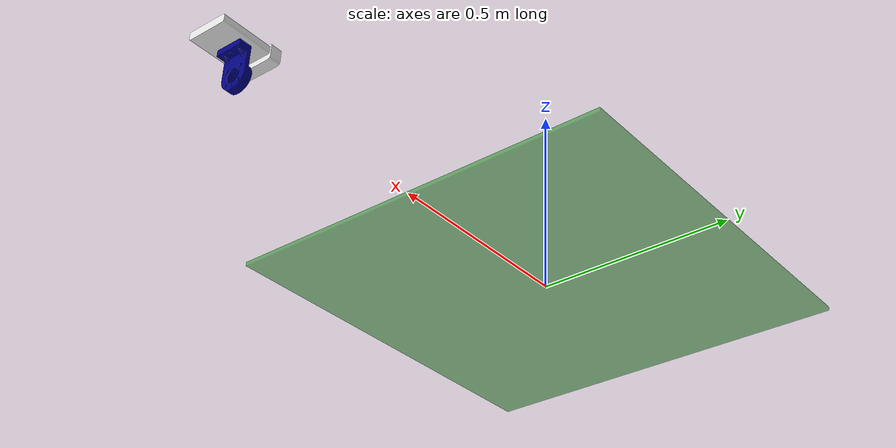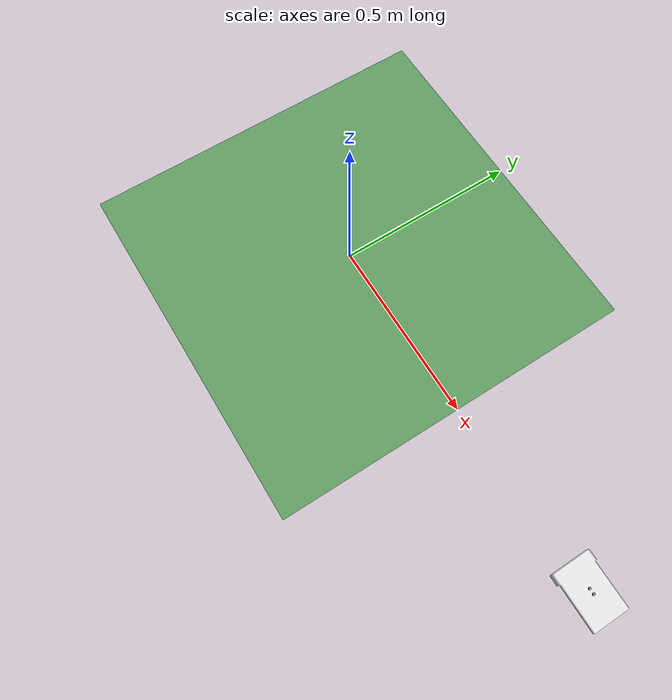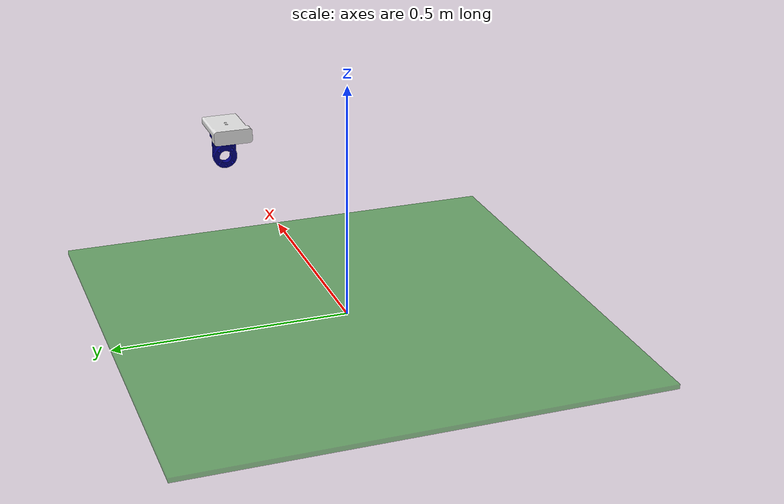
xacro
<?xml version="1.0" ?>

<robot name="k4a" xmlns:xacro="http://ros.org/wiki/xacro">
  <link name="world"/>
  <link name="winml_link"/>
  <link name="k4a_link_optical" />

  <link name="table">
      <visual>
          <geometry>
              <box size="1.0 1.0 0.01"/>
          </geometry>
          <material name="Green">
          <color rgba="0.0 0.5 0.0 0.5"/>
          </material>
      </visual>
      <collision>
          <geometry>
              <box size="1.0 1.0 0.01"/>
          </geometry>
      </collision>
  </link>

  <link name="k_mount" >
    <visual>
      <geometry>
        <mesh filename="package://k4a_arm_support/meshes/k4a_mount.dae"/>
      </geometry>
      <material name="Blue">
        <color rgba="0.0 0.0 0.5 1.0"/>
      </material>
    </visual>
    <collision>
      <geometry>
        <mesh filename="package://k4a_arm_support/meshes/k4a_mount.dae"/>
      </geometry>
    </collision>
  </link>

  <link name="k4a" >
    <visual>
      <geometry>
        <mesh filename="package://k4a_arm_support/meshes/k4a.dae"/>
      </geometry>
      <material name="White">
        <color rgba="0.9 0.9 0.9 1.0"/>
      </material>
    </visual>
    <collision>
      <geometry>
        <mesh filename="package://k4a_arm_support/meshes/k4a.dae"/>
      </geometry>
    </collision>
  </link>

  <joint name="world_to_table" type="fixed">
      <parent link="world"/>
      <child link="table"/>
      <origin xyz="0 0 0.0" rpy="0 0 0"/>
  </joint>

  <joint name="k_mount_to_k" type="fixed">
      <parent link="k_mount"/>
      <child link="k4a"/>
      <origin xyz="0.0 0.0 .0625" rpy="0.0 0.0 0.0"/>
  </joint>

  <joint name="table_to_K4A" type="fixed">
      <parent link="table"/>
      <child link="k_mount"/>
      <origin xyz="1.0 0 0" rpy="0 0 3.14159"/>
  </joint>

  <joint name="winml_to_k4a_optical" type="fixed">
      <parent link="k4a_link_optical"/>
      <child link="winml_link"/>
      <origin xyz="0 0 0" rpy="0 0 0"/>
  </joint>

  <joint name="k4a_optical_joint" type="fixed">
    <origin xyz="0 0 0" rpy="${-pi/2} 0 ${-pi/2}"/>
    <parent link="k4a"/>
    <child link="k4a_link_optical"/>
  </joint>

</robot>
